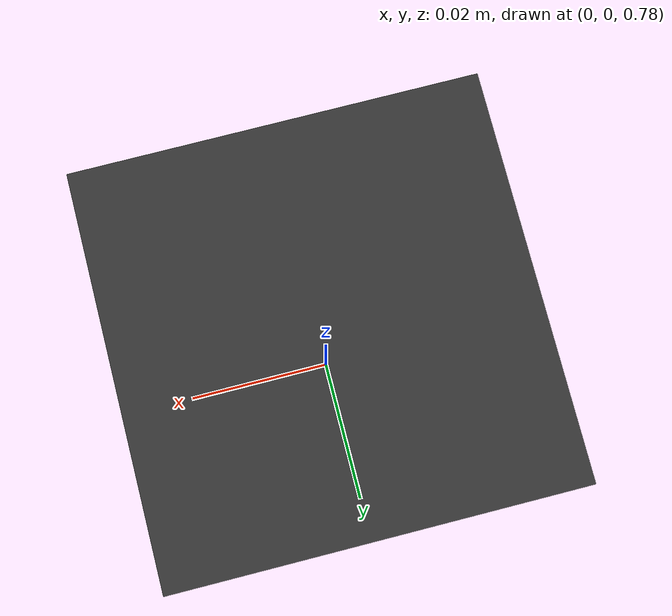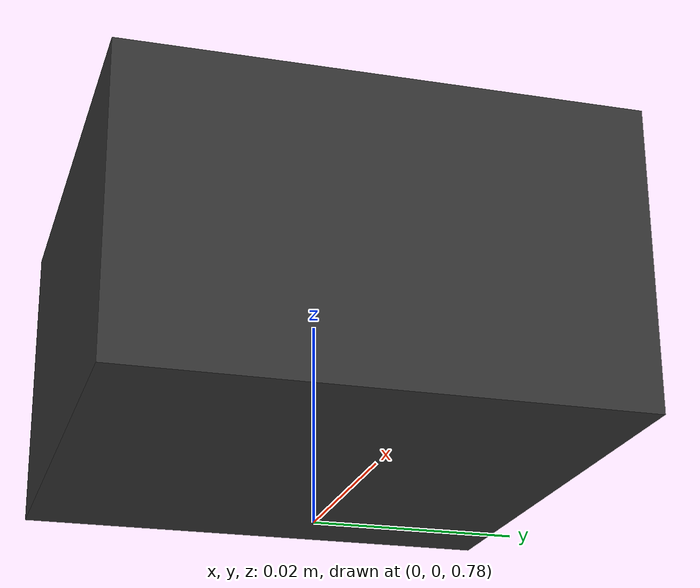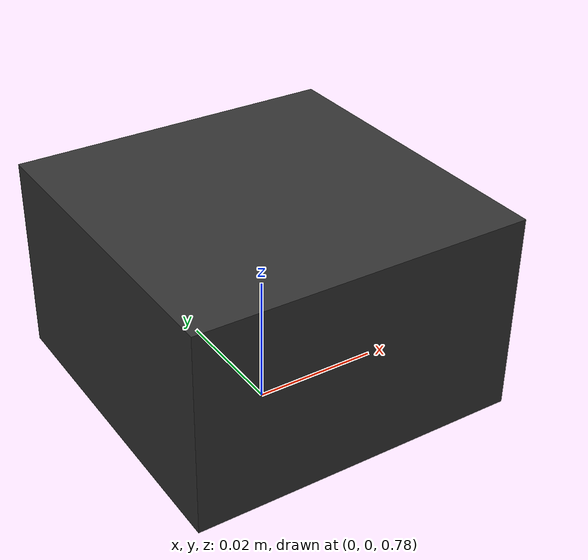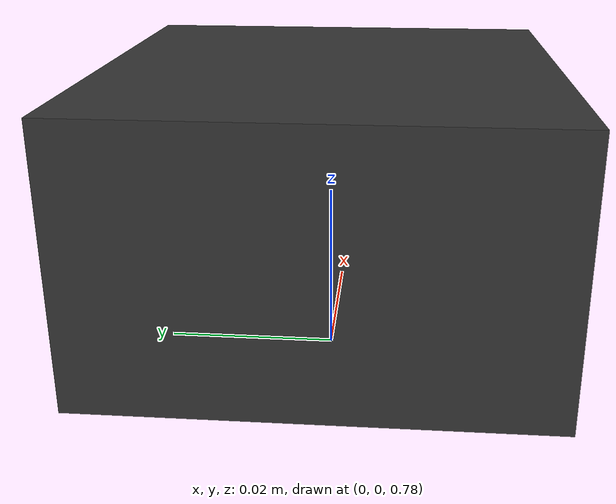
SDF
<?xml version="1.0" ?>
<sdf version="1.6">
  <model name="camera_bot_rgbd">

    <static>false</static>

    <link name="camera_link">
      <pose>0 0 0.8 0 0 0</pose>

      <inertial>
        <mass>0.3</mass>
        <inertia>
          <ixx>0.0005</ixx>
          <iyy>0.0005</iyy>
          <izz>0.0005</izz>
        </inertia>
      </inertial>

      <visual name="camera_visual">
        <geometry>
          <box>
            <size>0.05 0.05 0.03</size>
          </box>
        </geometry>
        <material>
          <ambient>0.2 0.2 0.2 1</ambient>
          <diffuse>0.2 0.2 0.2 1</diffuse>
        </material>
      </visual>

      <collision name="camera_collision">
        <geometry>
          <box>
            <size>0.05 0.05 0.03</size>
          </box>
        </geometry>
      </collision>

      <sensor name="rgbd_camera" type="depth">
        <always_on>true</always_on>
        <update_rate>30</update_rate>

        <camera>
          <horizontal_fov>1.57</horizontal_fov>
          <image>
            <width>640</width>
            <height>480</height>
            <format>R8G8B8</format>
          </image>
          <clip>
            <near>0.1</near>
            <far>10.0</far>
          </clip>
        </camera>

        <plugin name="rgbd_camera_controller" filename="libgazebo_ros_camera.so">
          <camera_name>camera</camera_name>
          <frame_name>camera_link</frame_name>
          <image_topic_name>color/image_raw</image_topic_name>
          <camera_info_topic_name>color/camera_info</camera_info_topic_name>
          <depth_image_topic_name>depth/image_raw</depth_image_topic_name>
          <depth_camera_info_topic_name>depth/camera_info</depth_camera_info_topic_name>
          <point_cloud>true</point_cloud>
          <point_cloud_topic_name>depth/points</point_cloud_topic_name>
        </plugin>
      </sensor>

    </link>

  </model>
</sdf>
